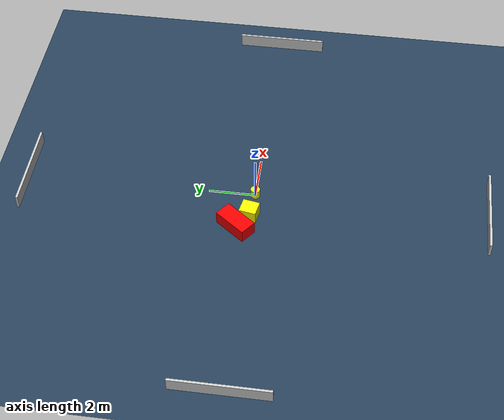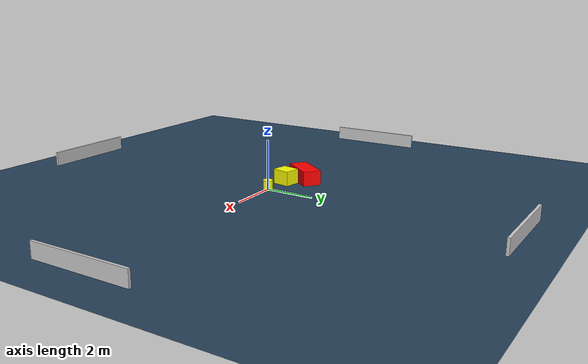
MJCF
<?xml version="1.0" ?>
<mujoco model="generated_environment">
  <option timestep="0.01" integrator="RK4" cone="elliptic"/>
  <default>
    <geom density="1"/>
  </default>
  <asset>
    <texture builtin="gradient" height="3072" name="skybox" rgb1="0.3 0.5 0.7" rgb2="0 0 0" type="skybox" width="512"/>
    <texture builtin="checker" height="300" name="groundplane" rgb1="0.2 0.3 0.4" rgb2="0.1 0.2 0.3" type="2d" width="300"/>
    <material name="groundplane" reflectance="0.2" texrepeat="5 5" texture="groundplane"/>
  </asset>
  <worldbody>
    <light dir="0 0 -1" directional="true" pos="0 0 1.5"/>
    <geom condim="3" friction="0.5 0.005 0.001" material="groundplane" name="floor" pos="0 0 0" size="0 0 0.05" type="plane"/>
    <body name="walls">
      <geom name="wall_1" condim="4" pos="-10.0 0.0 0.3" rgba="0.800000011920929 0.800000011920929 0.800000011920929 1.0" size="0.05 2.0 0.3" type="box"/>
      <geom name="wall_2" condim="4" pos="10.0 0.0 0.3" rgba="0.800000011920929 0.800000011920929 0.800000011920929 1.0" size="0.05 2.0 0.3" type="box"/>
      <geom name="wall_3" condim="4" pos="0.0 -10.0 0.3" rgba="0.800000011920929 0.800000011920929 0.800000011920929 1.0" size="2.0 0.05 0.3" type="box"/>
      <geom name="wall_4" condim="4" pos="0.0 10.0 0.3" rgba="0.800000011920929 0.800000011920929 0.800000011920929 1.0" size="2.0 0.05 0.3" type="box"/>
    </body>
    <body name="robot">
      <joint name="joint_x" type="slide" pos="0 0 0" axis="1 0 0"/>
      <joint name="joint_y" type="slide" pos="0 0 0" axis="0 1 0"/>
      <geom name="robot" type="cylinder" pos="0.0 0.0 0.2" size="0.2 0.2 0.0" mass="5.0" friction="1.0 0.005 0.0001" condim="4" rgba="1.0 1.0 0.0 1.0"/>
    </body>
    <body name="obstacle_1_movable">
      <geom name="obstacle_1_movable" condim="4" pos="-1.198308447659644 0.0990755777770098 0.3" euler="0 0 349.7830023640925" friction="0.0 0.005 0.001" rgba="1.0 1.0 0.0 1.0" size="0.335893329276312 0.3639773608725 0.3" type="box" mass="0.1"/>
      <joint type="free"/>
    </body>
    <body name="obstacle_2_static">
      <geom name="obstacle_2_static" condim="4" pos="-1.8957623601347011 0.5959150285374689 0.3" euler="0 0 142.65743737490678" friction="0.0 0.005 0.001" rgba="1.0 0.0 0.0 1.0" size="0.3691193650869884 0.7713065700156656 0.3" type="box"/>
    </body>
  </worldbody>
  <actuator>
    <motor name="actuator_x" joint="joint_x" gear="1" ctrlrange="-1 1"/>
    <motor name="actuator_y" joint="joint_y" gear="1" ctrlrange="-1 1"/>
  </actuator>
</mujoco>
